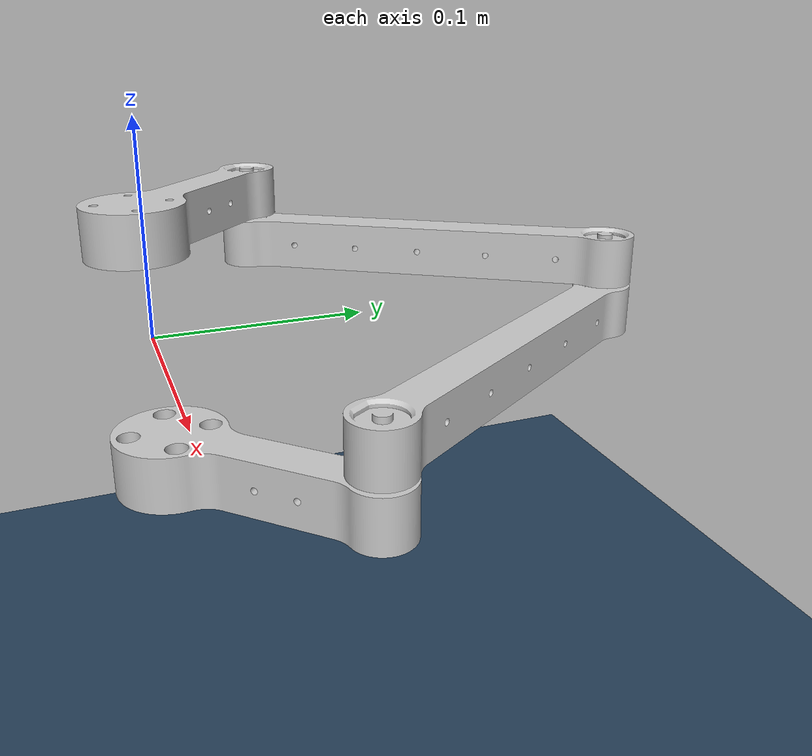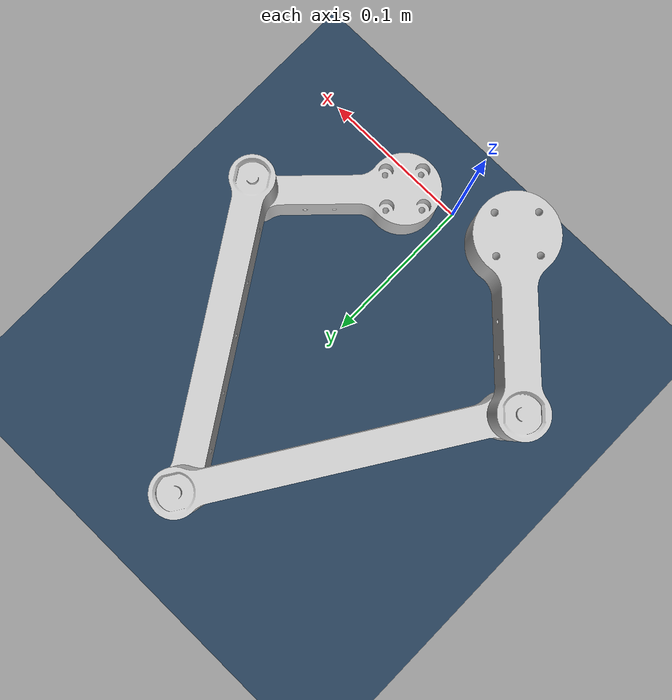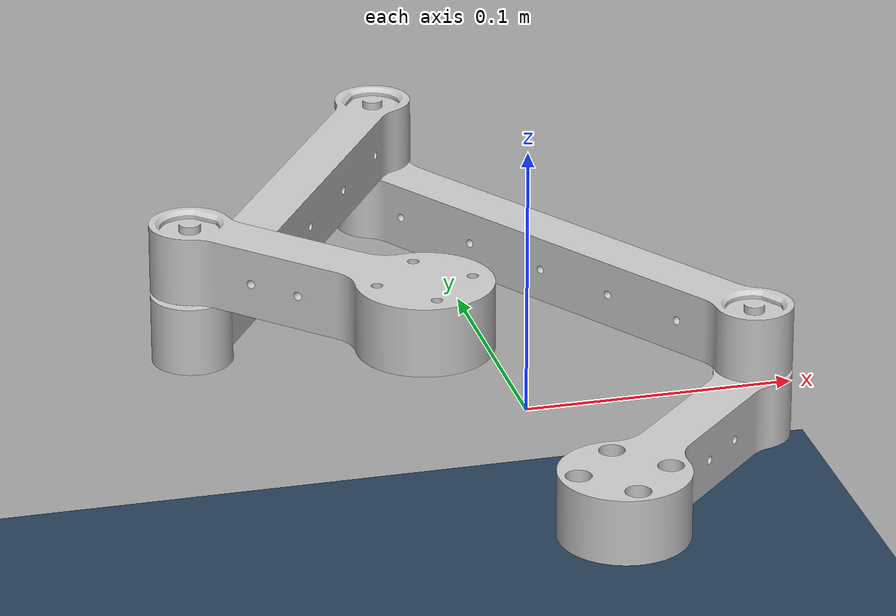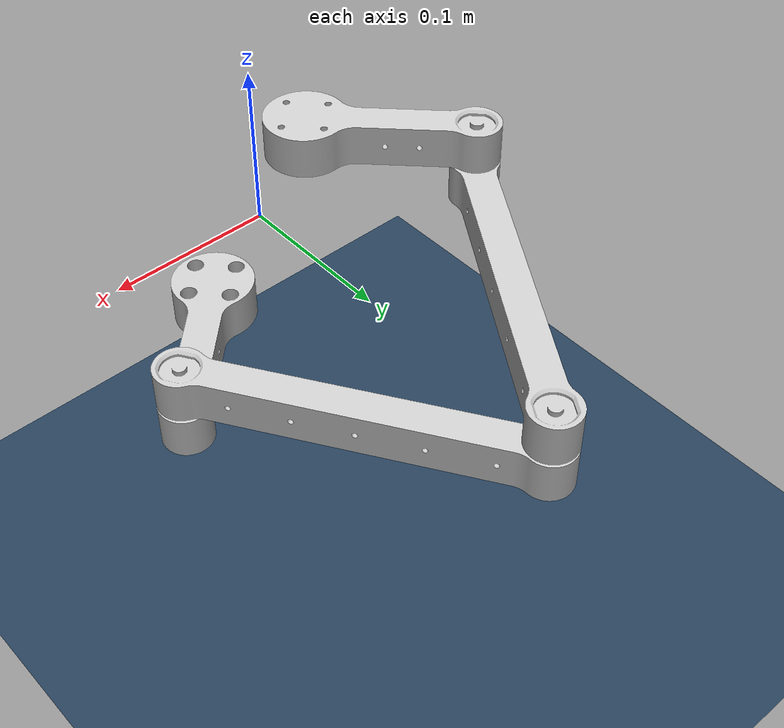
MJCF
<mujoco model="parallel_5_bar_mechanism">
    <compiler meshdir="./mesh" angle="degree" inertiafromgeom="true"/>
    <option gravity="0 0 -9.81" integrator="RK4" timestep="0.01"/>
    <asset>
        <texture name="grid" type="2d" builtin="checker" rgb1=".1 .2 .3" rgb2=".2 .3 .4" width="300" height="300"/>
        <material name="grid" texture="grid" texrepeat="8 8" reflectance=".2"/>
     </asset>

    <worldbody>
        <light name="top" pos="0 0 1"/>
        <geom name="worldbody" size="1 1 .01" pos="0 0 -.2" type="plane" material="grid"/>
        <body name="base" pos="0 0 0">
            <body name="proximal1" pos="-0.0375 0.0 0.042" euler="0 0 135.0">
                <joint name="joint1" type="hinge" axis="0 0 1" pos="0 0 0"   damping="0" stiffness="0" ref="135.0"/>
                <geom type="mesh" mesh="Proximal_Link_1" density="2700" condim="1" material="aluminum_material"/>
                <body name="distal1" pos="0.1 0 -0.028" euler="0 0 -77.755376534">
                    <joint name="joint3" type="hinge" axis="0 0 1" pos="0 0 0"  damping="0" stiffness="0" ref="-77.755376534"/>
                    <geom type="mesh" mesh="Distal_Link_1" density="2700" condim="1" material="aluminum_material"/>
                    <body name="end_effector" pos="0.2 0 0">
					    <geom contype="0" name="end_effector" pos="0 0 0" rgba="0.0 0.8 0.6 1" size=".01" type="sphere"/>
				    </body>
                </body>
            </body>
            <body name="proximal2" pos="0.0375 0.0 -0.042" euler="0 0 -135.0">
                <joint name="joint2" type="hinge" axis="0 0 1" pos="0 0 0"  damping="0" stiffness="0"  ref="-135.0"/>
                <geom type="mesh" mesh="Proximal_Link_2" density="2700" condim="1" material="aluminum_material"/>
                <body name="distal2" pos="-0.1 0 0.028" euler="0 0 77.755376534">
                    <joint name="joint4" type="hinge" axis="0 0 1" pos="0 0 0"  damping="0" stiffness="0" ref="77.755376534"/>
                    <geom type="mesh" mesh="Distal_Link_2" density="2700" condim="1" material="aluminum_material"/>
                </body>
            </body>
        </body>

    </worldbody>
    <equality>
		<connect anchor="0.2 0 0" body1="distal1" body2="distal2" name="equality_constraint"/>
	</equality>
    <sensor>
		<framepos objtype="body" objname="end_effector"/>
		<framelinvel objtype="body" objname="end_effector"/>
	    	<framelinacc objtype="body" objname="end_effector"/>
	</sensor>
    <actuator>
        <motor joint="joint1" ctrllimited="true"  ctrlrange="-1.6 1.6"/>
        <motor joint="joint2" ctrllimited="true"  ctrlrange="-1.6 1.6"/>
    </actuator>
    <asset>
        <mesh name="Proximal_Link_1" file="Proximal Link 1.stl" scale="0.001 0.001 0.001"/>

        <mesh name="Proximal_Link_2" file="Proximal Link 2.stl" scale="0.001 0.001 0.001"/>

        <mesh name="Distal_Link_1" file="Distal Link 1.stl" scale="0.001 0.001 0.001"/>

        <mesh name="Distal_Link_2" file="Distal Link 2.stl" scale="0.001 0.001 0.001"/>

        <material name="aluminum_material" rgba="0.8 0.8 0.8 1" specular="0.8" shininess="0.9" reflectance="0.3"/>
    </asset>
</mujoco>
